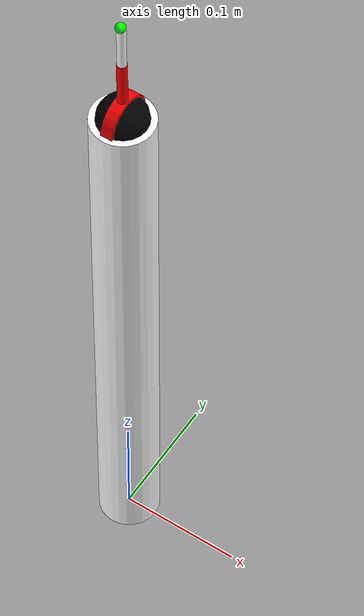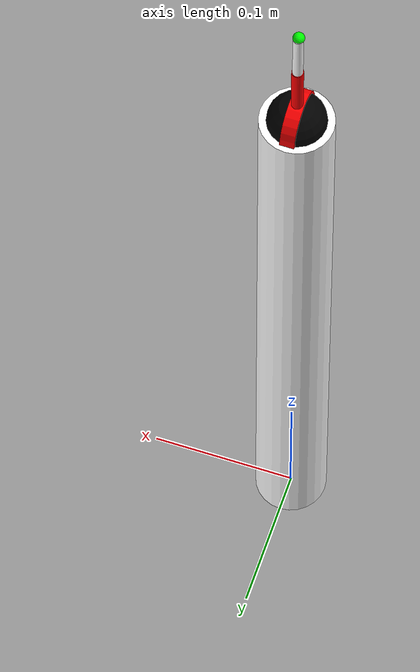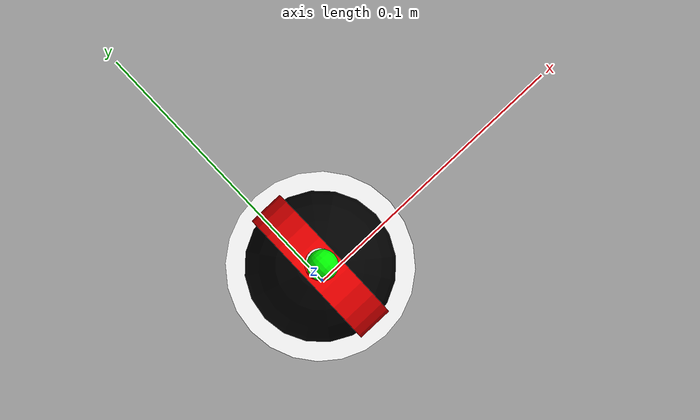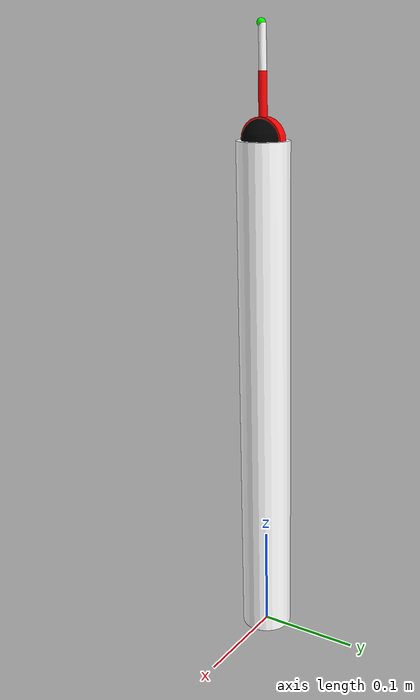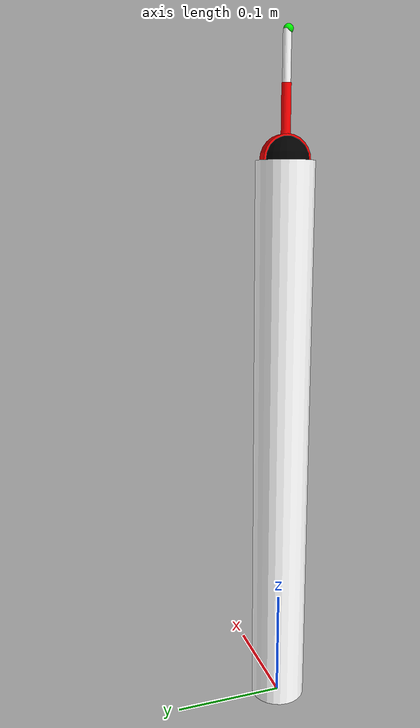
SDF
<sdf version="1.10">
  <world name="simple">
    <physics name="10ms" type="ode">
      <max_step_size>0.01</max_step_size>
      <real_time_factor>1</real_time_factor>
      <real_time_update_rate>1000</real_time_update_rate>
    </physics>
    <plugin name="ignition::gazebo::systems::Physics" filename="ignition-gazebo-physics-system"/>
    <plugin name="ignition::gazebo::systems::UserCommands" filename="ignition-gazebo-user-commands-system"/>
    <plugin name="ignition::gazebo::systems::SceneBroadcaster" filename="ignition-gazebo-scene-broadcaster-system"/>
    <plugin name="ignition::gazebo::systems::Sensors" filename="ignition-gazebo-sensors-system">
      <render_engine>ogre2</render_engine>
    </plugin>
    <gravity>0 0 -9.8000000000000007</gravity>
    <magnetic_field>5.5644999999999998e-06 2.2875799999999999e-05 -4.2388400000000002e-05</magnetic_field>
    <atmosphere type="adiabatic"/>
    <scene>
      <ambient>0.400000006 0.400000006 0.400000006 1</ambient>
      <background>0.699999988 0.699999988 0.699999988 1</background>
      <shadows>true</shadows>
    </scene>
    <model name="turret">
      <pose>0 0 0 0 0 0</pose>
      <joint name="base_link" type="fixed">
        <pose>0 0 0 0 0 0</pose>
        <parent>world</parent>
        <child>turret/base_link</child>
      </joint>
      <link name="turret/base_link">
        <pose>0 0 0 0 0 0</pose>
        <inertial>
          <pose>0 0 0 0 0 0</pose>
          <mass>0.10000000000000001</mass>
          <inertia>
            <ixx>0.10000000000000001</ixx>
            <ixy>0</ixy>
            <ixz>0</ixz>
            <iyy>0.10000000000000001</iyy>
            <iyz>0</iyz>
            <izz>0.10000000000000001</izz>
          </inertia>
        </inertial>
        <visual name="turret/base_link_visual">
          <pose>0 0 0.25 0 0 0</pose>
          <geometry>
            <cylinder>
              <length>0.5</length>
              <radius>0.025000000000000001</radius>
            </cylinder>
          </geometry>
          <material>
            <diffuse>1 1 1 1</diffuse>
            <ambient>1 1 1 1</ambient>
          </material>
        </visual>
        <enable_wind>false</enable_wind>
      </link>
      <joint name="joint1" type="revolute">
        <pose>0 0 0 0 0 0</pose>
        <parent>turret/base_link</parent>
        <child>turret/link1</child>
        <axis>
          <xyz>0 0 1</xyz>
          <limit>
            <lower>-3.1415999999999999</lower>
            <upper>3.1415999999999999</upper>
            <effort>10</effort>
            <velocity>3</velocity>
            <stiffness>100000000</stiffness>
            <dissipation>1</dissipation>
          </limit>
          <dynamics>
            <spring_reference>0</spring_reference>
            <spring_stiffness>0</spring_stiffness>
            <damping>0</damping>
            <friction>0</friction>
          </dynamics>
        </axis>
      </joint>
      <link name="turret/link1">
        <pose>0 0 0.5 0 0 0</pose>
        <inertial>
          <pose>0 0 0 0 0 0</pose>
          <mass>0.10000000000000001</mass>
          <inertia>
            <ixx>0.10000000000000001</ixx>
            <ixy>0</ixy>
            <ixz>0</ixz>
            <iyy>0.10000000000000001</iyy>
            <iyz>0</iyz>
            <izz>0.10000000000000001</izz>
          </inertia>
        </inertial>
        <visual name="turret/link1_visual">
          <pose>0 0 0 0 0 0</pose>
          <geometry>
            <sphere>
              <radius>0.02</radius>
            </sphere>
          </geometry>
          <material>
            <diffuse>0 0 0 1</diffuse>
            <ambient>0 0 0 1</ambient>
          </material>
        </visual>
        <enable_wind>false</enable_wind>
      </link>
      <joint name="joint2" type="revolute">
        <pose>0 0 -2.7755575615628914e-17 0 0 0</pose>
        <parent>turret/link1</parent>
        <child>turret/link2</child>
        <axis>
          <xyz>0 0 1</xyz>
          <limit>
            <lower>-1.2</lower>
            <upper>1.2</upper>
            <effort>10</effort>
            <velocity>3</velocity>
            <stiffness>100000000</stiffness>
            <dissipation>1</dissipation>
          </limit>
          <dynamics>
            <spring_reference>0</spring_reference>
            <spring_stiffness>0</spring_stiffness>
            <damping>0</damping>
            <friction>0</friction>
          </dynamics>
        </axis>
      </joint>
      <link name="turret/link2">
        <pose>0 0 0.5 1.57079632679 0 0</pose>
        <inertial>
          <pose>0 0 0 0 0 0</pose>
          <mass>0.20000000000000001</mass>
          <inertia>
            <ixx>0.20000000000000001</ixx>
            <ixy>0</ixy>
            <ixz>0</ixz>
            <iyy>0.20000000000000001</iyy>
            <iyz>0</iyz>
            <izz>0.20000000000000001</izz>
          </inertia>
        </inertial>
        <visual name="turret/link2_visual">
          <pose>0 0 0 0 1.5707963267948966 0</pose>
          <geometry>
            <cylinder>
              <length>0.01</length>
              <radius>0.021000000000000001</radius>
            </cylinder>
          </geometry>
          <material>
            <diffuse>1 0 0 1</diffuse>
            <ambient>1 0 0 1</ambient>
          </material>
        </visual>
        <visual name="turret/link2_2_visual_1">
          <pose>0 0.029999999999999999 0 1.57079632679 0 0</pose>
          <geometry>
            <cylinder>
              <length>0.059999999999999998</length>
              <radius>0.0040000000000000001</radius>
            </cylinder>
          </geometry>
          <material>
            <diffuse>1 0 0 1</diffuse>
            <ambient>1 0 0 1</ambient>
          </material>
        </visual>
        <enable_wind>false</enable_wind>
      </link>
      <joint name="joint3" type="prismatic">
        <pose>0 0 0 0 0 0</pose>
        <parent>turret/link2</parent>
        <child>turret/link3</child>
        <axis>
          <xyz>0 0 1</xyz>
          <limit>
            <lower>0</lower>
            <upper>0.040000000000000001</upper>
            <effort>10</effort>
            <velocity>3</velocity>
            <stiffness>100000000</stiffness>
            <dissipation>1</dissipation>
          </limit>
          <dynamics>
            <spring_reference>0</spring_reference>
            <spring_stiffness>0</spring_stiffness>
            <damping>0</damping>
            <friction>0</friction>
          </dynamics>
        </axis>
      </joint>
      <link name="turret/link3">
        <pose>0 0 0.49999999999902001 0 0 0</pose>
        <inertial>
          <pose>0 0 0.05000000000000001 0 0 0</pose>
          <mass>0.20000000000000001</mass>
          <inertia>
            <ixx>0.20050000000000001</ixx>
            <ixy>0</ixy>
            <ixz>0</ixz>
            <iyy>0.20050000000000001</iyy>
            <iyz>0</iyz>
            <izz>0.20000000000000001</izz>
          </inertia>
        </inertial>
        <visual name="turret/link3_visual">
          <pose>0 0 0.059999999999999998 0 0 0</pose>
          <geometry>
            <cylinder>
              <length>0.080000000000000002</length>
              <radius>0.0035000000000000001</radius>
            </cylinder>
          </geometry>
          <material>
            <diffuse>1 1 1 1</diffuse>
            <ambient>1 1 1 1</ambient>
          </material>
        </visual>
        <visual name="turret/link3_fixed_joint_lump__turret/tool0_visual_1">
          <pose>2.1684043449710089e-19 -0.001 0.10000000000000001 1.5707963267948972 1.5707963057214724 0</pose>
          <geometry>
            <sphere>
              <radius>0.0040000000000000001</radius>
            </sphere>
          </geometry>
          <material>
            <diffuse>0 1 0 1</diffuse>
            <ambient>0 1 0 1</ambient>
          </material>
        </visual>
        <sensor name="camera" type="camera">
          <pose>0 0 0.10000000000000001 -3.1415926535293441 1.5707926536057681 1.5707926536359922</pose>
          <topic>turret/image</topic>
          <update_rate>30</update_rate>
          <enable_metrics>false</enable_metrics>
          <camera name="__default__">
            <pose>0 0 0 0 0 0</pose>
            <horizontal_fov>1.0469999999999999</horizontal_fov>
            <image>
              <width>640</width>
              <height>400</height>
              <format>RGB_INT8</format>
              <anti_aliasing>4</anti_aliasing>
            </image>
            <camera_info_topic>__default__</camera_info_topic>
            <trigger_topic></trigger_topic>
            <triggered>false</triggered>
            <clip>
              <near>0.050000000000000003</near>
              <far>100</far>
            </clip>
            <save enabled="false">
              <path>__default__</path>
            </save>
            <visibility_mask>4294967295</visibility_mask>
            <noise>
              <type>none</type>
              <mean>0</mean>
              <stddev>0</stddev>
            </noise>
            <distortion>
              <k1>0</k1>
              <k2>0</k2>
              <k3>0</k3>
              <p1>0</p1>
              <p2>0</p2>
              <center>0.5 0.5</center>
            </distortion>
            <lens>
              <type>stereographic</type>
              <scale_to_hfov>true</scale_to_hfov>
              <cutoff_angle>1.5707963267948966</cutoff_angle>
              <env_texture_size>256</env_texture_size>
            </lens>
            <optical_frame_id>turret/tool0</optical_frame_id>
          </camera>
        </sensor>
        <enable_wind>false</enable_wind>
      </link>
      <plugin name="ignition::gazebo::systems::JointController" filename="libignition-gazebo-joint-controller-system.so">
        <joint_name>joint1</joint_name>
        <topic>turret/joint1_cmd_vel</topic>
      </plugin>
      <plugin name="ignition::gazebo::systems::JointController" filename="libignition-gazebo-joint-controller-system.so">
        <joint_name>joint2</joint_name>
        <topic>turret/joint2_cmd_vel</topic>
      </plugin>
      <plugin name="ignition::gazebo::systems::JointController" filename="libignition-gazebo-joint-controller-system.so">
        <joint_name>joint3</joint_name>
        <topic>turret/joint3_cmd_vel</topic>
      </plugin>
      <plugin name="ignition::gazebo::systems::JointStatePublisher" filename="ignition-gazebo-joint-state-publisher-system"/>
      <frame name="link2_2" attached_to="turret/link2">
        <pose>0 0 0 0 0 0</pose>
      </frame>
      <frame name="turret/link2_2" attached_to="link2_2">
        <pose>0 0 0 0 0 0</pose>
      </frame>
      <frame name="link4_2" attached_to="turret/link3">
        <pose>0 0 0.10000000000000001 1.5707963267948957 1.5707963267948966 0</pose>
      </frame>
      <frame name="turret/tool0" attached_to="link4_2">
        <pose>0 0 0 0 0 0</pose>
      </frame>
      <static>false</static>
      <self_collide>false</self_collide>
    </model>
    <light name="sun" type="directional">
      <pose>0 0 10 0 0 0</pose>
      <cast_shadows>true</cast_shadows>
      <intensity>1</intensity>
      <direction>-0.5 0.10000000000000001 -0.90000000000000002</direction>
      <diffuse>1 1 1 1</diffuse>
      <specular>0.5 0.5 0.5 1</specular>
      <attenuation>
        <range>1000</range>
        <linear>0.01</linear>
        <constant>0.90000000000000002</constant>
        <quadratic>0.001</quadratic>
      </attenuation>
      <spot>
        <inner_angle>0</inner_angle>
        <outer_angle>0</outer_angle>
        <falloff>0</falloff>
      </spot>
    </light>
  </world>
</sdf>
